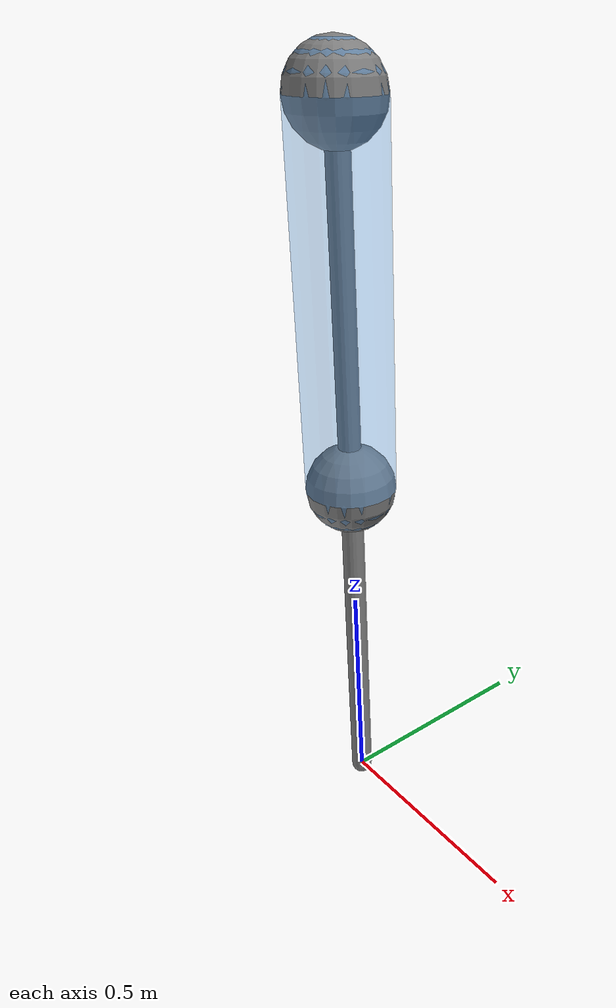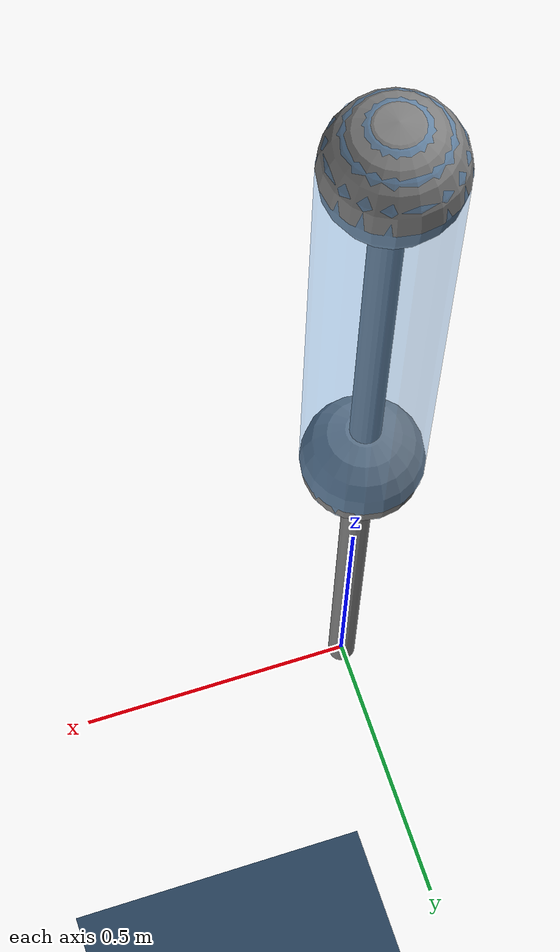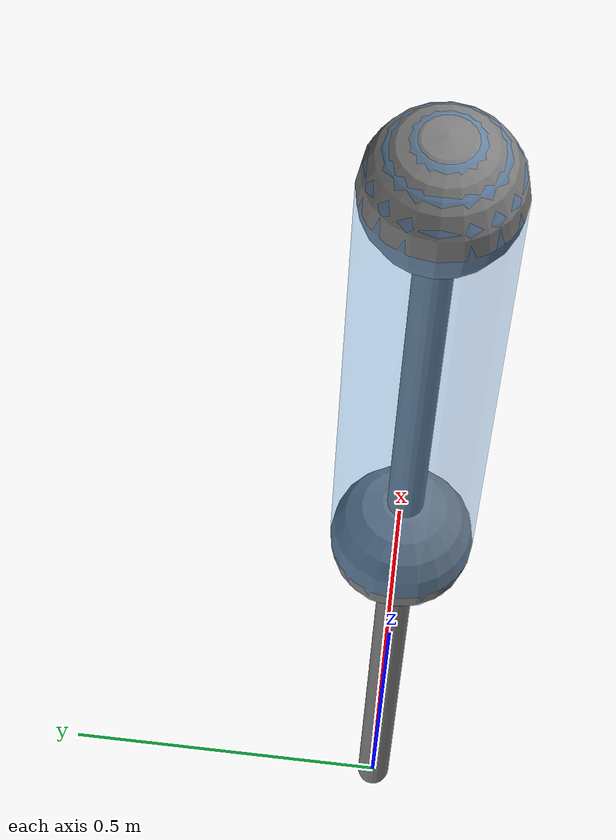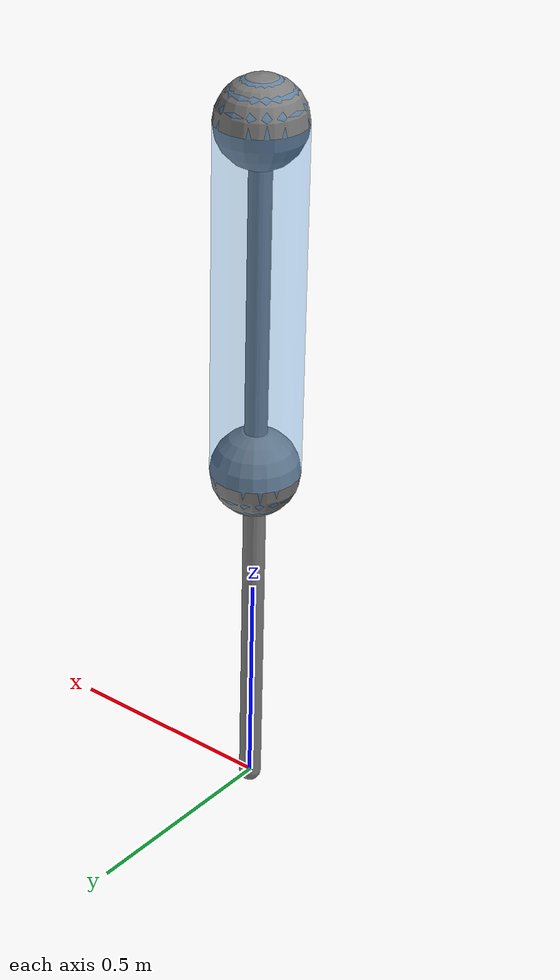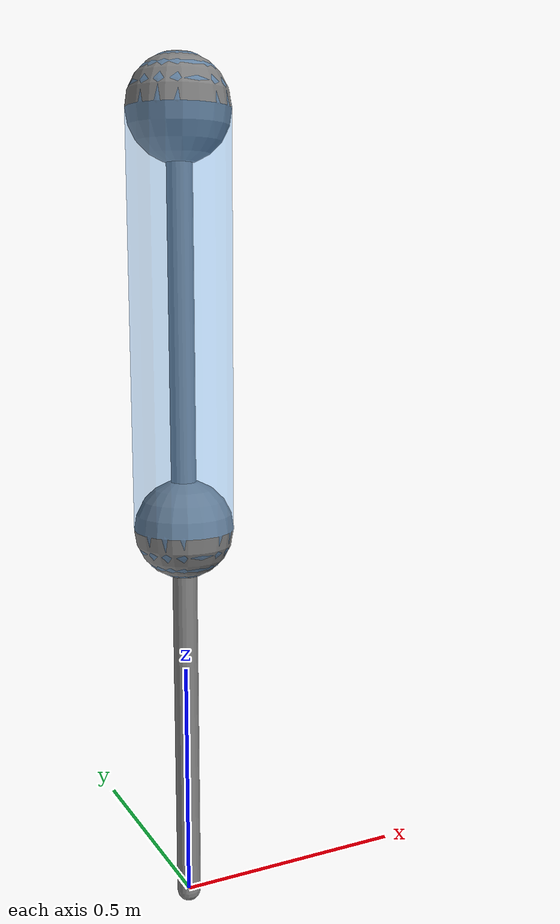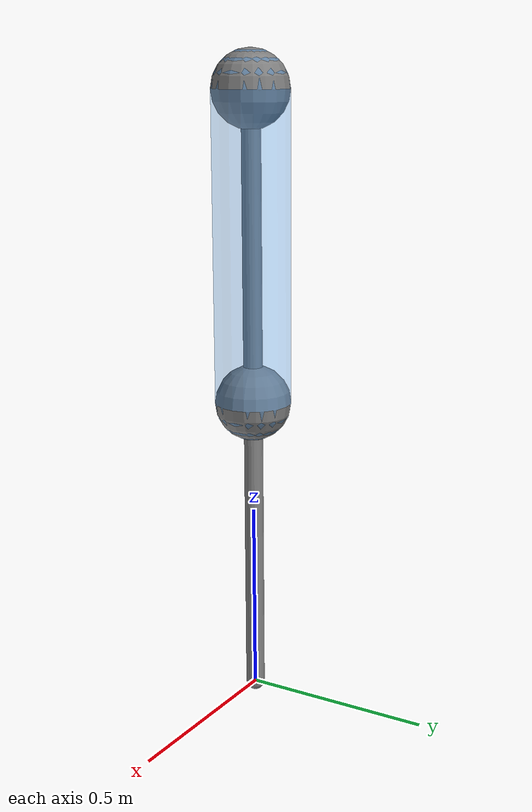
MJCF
<mujoco model="2dof_arm">

    <!-- Background texture -->
    <asset>
        <texture name="grid" type="2d" builtin="checker" rgb1=".1 .2 .3"
        rgb2=".2 .3 .4" width="100" height="100"/>
        <material name="grid" texture="grid" texrepeat="8 8" reflectance=".2"/>
    </asset>

    <worldbody>
        <camera pos="0.469 -5.777 0.669" xyaxes="1.000 0.005 -0.000 -0.001 0.157 0.988"/>
        <!-- Place background -->
        <geom size="2 2 .01" pos="0 0 -2" type="plane" material="grid"/>
        <!-- Static light -->
        <light pos="0 0 5" dir="0 0 -1" diffuse=".8 .8 .8" specular=".3 .3 .3"/>

        <!-- Weightless pendulum -->
        <body name="pendulum_stick1" pos="0 0 0">
            <joint name="hinge1" type="hinge" axis="0 1 0" pos="0 0 0"/>
            <geom name="pendulum_stick_geom1" type="capsule" fromto="0 0 0 0 0 0.8" size="0.025"/>
            <inertial mass="0.0001" diaginertia="1e-5 1e-5 1e-5"  pos="0 0 0"/>

            <!-- Mass on the end of the pendulum -->
            <body name="pendulum1" pos="0 0 0.8">
                <geom name="pendulum_geom1" type="sphere" size="0.1"/>
                <inertial mass="0.1" diaginertia="2e-3 2e-3 2e-3" pos="0 0 0"/>

                <body name="pendulum_stick2" pos="0 0 0">
                    <joint name="hinge2" type="hinge" axis="0 1 0" pos="0 0 0"/>
                    <geom name="pendulum_stick_geom2" type="capsule" fromto="0 0 0 0 0 0.8" size="0.025"/>
                    <inertial mass="0.0001" diaginertia="1e-5 1e-5 1e-5"  pos="0 0 0"/>

                    <geom name="visual_capsule"
                        type="capsule"
                        fromto="0 0 0 0 0 0.8"
                        size="0.1"
                        rgba="0.2 0.6 1.0 0.3"/>

                    <!-- Mass on the end of the pendulum -->
                    <body name="pendulum2" pos="0 0 0.8">
                        <geom name="pendulum_geom2" type="sphere" size="0.1"/>
                        <inertial mass="0.1" diaginertia="2e-3 2e-3 2e-3" pos="0 0 0"/>
                    </body>
                </body>
            </body>
        </body>

    </worldbody>

    <!-- Force actuator on the cart -->
    <actuator>
        <general joint="hinge1"/>
        <general joint="hinge2"/>
    </actuator>

</mujoco>
